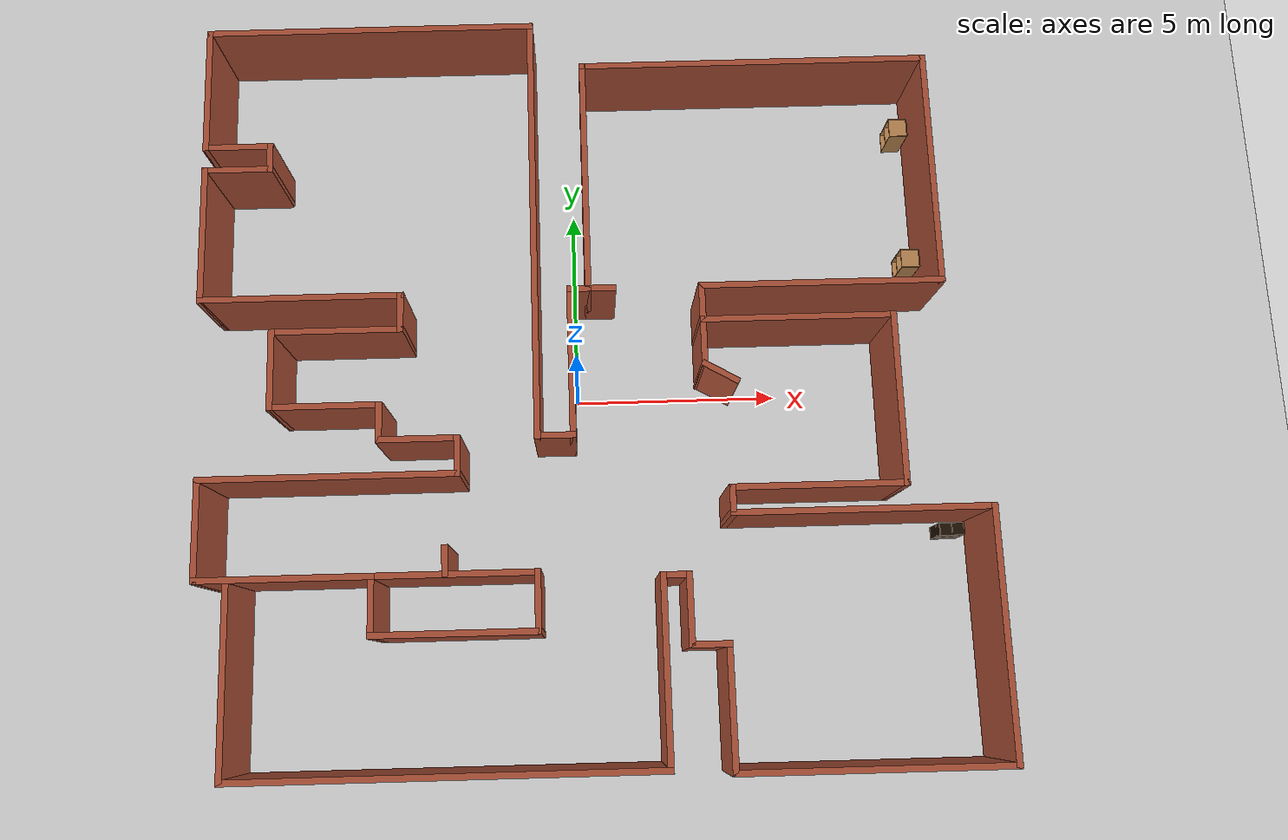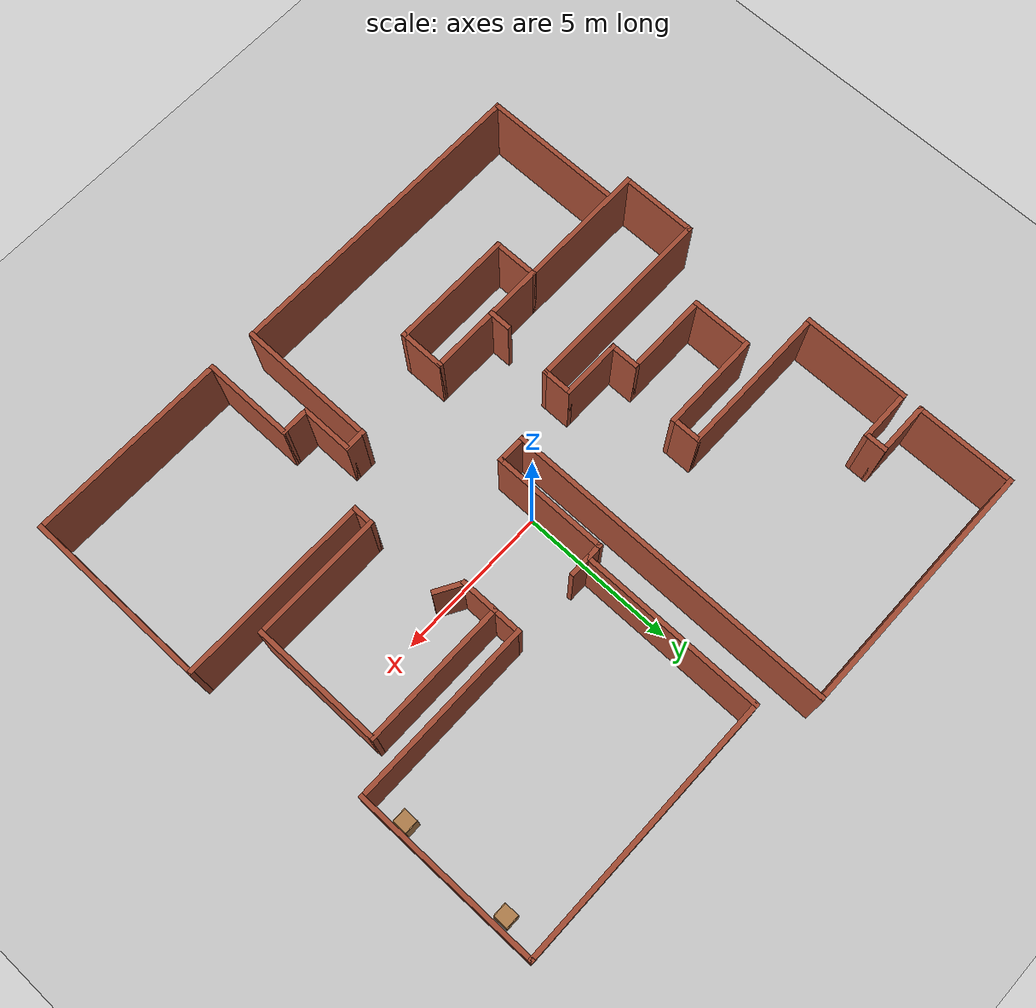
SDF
<sdf version="1.6">
 <world name="default">
  <model name="ground_plane">
   <static>1</static>
   <link name="link">
    <collision name="collision">
     <geometry><plane><normal>0 0 1</normal><size>100 100</size></plane></geometry>
     <surface>
      <contact><collide_bitmask>65535</collide_bitmask></contact>
      <friction><ode><mu>100</mu><mu2>50</mu2></ode></friction>
     </surface>
    </collision>
    <visual name="visual">
     <cast_shadows>0</cast_shadows>
     <geometry><plane><normal>0 0 1</normal><size>100 100</size></plane></geometry>
     <material>
      <script><uri>file://media/materials/scripts/gazebo.material</uri><name>Gazebo/Grey</name></script>
     </material>
    </visual>
   </link>
  </model>
  <model name="map_117">
   <pose>0.28791 0.113747 0 0 -0 0</pose>
   <link name="Wall_10">
    <collision name="Wall_10_Collision">
     <geometry><box><size>0.75 0.15 2.5</size></box></geometry>
     <pose>0 0 1.25 0 -0 0</pose>
    </collision>
    <visual name="Wall_10_Visual">
     <pose>0 0 1.25 0 -0 0</pose>
     <geometry><box><size>0.75 0.15 2.5</size></box></geometry>
     <material>
      <script><uri>file://media/materials/scripts/gazebo.material</uri><name>Gazebo/Bricks</name></script>
      <ambient>1 1 1 1</ambient>
     </material>
     <meta><layer>0</layer></meta>
    </visual>
    <pose>-7.775 5.8 0 0 -0 -1.5708</pose>
   </link>
   <link name="Wall_11">
    <collision name="Wall_11_Collision">
     <geometry><box><size>1.75 0.15 2.5</size></box></geometry>
     <pose>0 0 1.25 0 -0 0</pose>
    </collision>
    <visual name="Wall_11_Visual">
     <pose>0 0 1.25 0 -0 0</pose>
     <geometry><box><size>1.75 0.15 2.5</size></box></geometry>
     <material>
      <script><uri>file://media/materials/scripts/gazebo.material</uri><name>Gazebo/Bricks</name></script>
      <ambient>1 1 1 1</ambient>
     </material>
     <meta><layer>0</layer></meta>
    </visual>
    <pose>-8.575 5.5 0 0 -0 3.14159</pose>
   </link>
   <link name="Wall_21">
    <collision name="Wall_21_Collision">
     <geometry><box><size>3.5 0.15 2.5</size></box></geometry>
     <pose>0 0 1.25 0 -0 0</pose>
    </collision>
    <visual name="Wall_21_Visual">
     <pose>0 0 1.25 0 -0 0</pose>
     <geometry><box><size>3.5 0.15 2.5</size></box></geometry>
     <material>
      <script><uri>file://media/materials/scripts/gazebo.material</uri><name>Gazebo/Bricks</name></script>
      <ambient>1 1 1 1</ambient>
     </material>
     <meta><layer>0</layer></meta>
    </visual>
    <pose>-9.375 3.825 0 0 -0 -1.5708</pose>
   </link>
   <link name="Wall_22">
    <collision name="Wall_22_Collision">
     <geometry><box><size>5 0.15 2.5</size></box></geometry>
     <pose>0 0 1.25 0 -0 0</pose>
    </collision>
    <visual name="Wall_22_Visual">
     <pose>0 0 1.25 0 -0 0</pose>
     <geometry><box><size>5 0.15 2.5</size></box></geometry>
     <material>
      <script><uri>file://media/materials/scripts/gazebo.material</uri><name>Gazebo/Bricks</name></script>
      <ambient>1 1 1 1</ambient>
     </material>
     <meta><layer>0</layer></meta>
    </visual>
    <pose>-6.95 2.15 0 0 -0 0</pose>
   </link>
   <link name="Wall_23">
    <collision name="Wall_23_Collision">
     <geometry><box><size>1 0.15 2.5</size></box></geometry>
     <pose>0 0 1.25 0 -0 0</pose>
    </collision>
    <visual name="Wall_23_Visual">
     <pose>0 0 1.25 0 -0 0</pose>
     <geometry><box><size>1 0.15 2.5</size></box></geometry>
     <material>
      <script><uri>file://media/materials/scripts/gazebo.material</uri><name>Gazebo/Bricks</name></script>
      <ambient>1 1 1 1</ambient>
     </material>
     <meta><layer>0</layer></meta>
    </visual>
    <pose>-4.525 1.725 0 0 -0 -1.5708</pose>
   </link>
   <link name="Wall_24">
    <collision name="Wall_24_Collision">
     <geometry><box><size>3.25 0.15 2.5</size></box></geometry>
     <pose>0 0 1.25 0 -0 0</pose>
    </collision>
    <visual name="Wall_24_Visual">
     <pose>0 0 1.25 0 -0 0</pose>
     <geometry><box><size>3.25 0.15 2.5</size></box></geometry>
     <material>
      <script><uri>file://media/materials/scripts/gazebo.material</uri><name>Gazebo/Bricks</name></script>
      <ambient>1 1 1 1</ambient>
     </material>
     <meta><layer>0</layer></meta>
    </visual>
    <pose>-6.075 1.3 0 0 -0 3.14159</pose>
   </link>
   <link name="Wall_25">
    <collision name="Wall_25_Collision">
     <geometry><box><size>2 0.15 2.5</size></box></geometry>
     <pose>0 0 1.25 0 -0 0</pose>
    </collision>
    <visual name="Wall_25_Visual">
     <pose>0 0 1.25 0 -0 0</pose>
     <geometry><box><size>2 0.15 2.5</size></box></geometry>
     <material>
      <script><uri>file://media/materials/scripts/gazebo.material</uri><name>Gazebo/Bricks</name></script>
      <ambient>1 1 1 1</ambient>
     </material>
     <meta><layer>0</layer></meta>
    </visual>
    <pose>-7.625 0.375 0 0 -0 -1.5708</pose>
   </link>
   <link name="Wall_26">
    <collision name="Wall_26_Collision">
     <geometry><box><size>2.75 0.15 2.5</size></box></geometry>
     <pose>0 0 1.25 0 -0 0</pose>
    </collision>
    <visual name="Wall_26_Visual">
     <pose>0 0 1.25 0 -0 0</pose>
     <geometry><box><size>2.75 0.15 2.5</size></box></geometry>
     <material>
      <script><uri>file://media/materials/scripts/gazebo.material</uri><name>Gazebo/Bricks</name></script>
      <ambient>1 1 1 1</ambient>
     </material>
     <meta><layer>0</layer></meta>
    </visual>
    <pose>-6.325 -0.55 0 0 -0 0</pose>
   </link>
   <link name="Wall_27">
    <collision name="Wall_27_Collision">
     <geometry><box><size>1 0.15 2.5</size></box></geometry>
     <pose>0 0 1.25 0 -0 0</pose>
    </collision>
    <visual name="Wall_27_Visual">
     <pose>0 0 1.25 0 -0 0</pose>
     <geometry><box><size>1 0.15 2.5</size></box></geometry>
     <material>
      <script><uri>file://media/materials/scripts/gazebo.material</uri><name>Gazebo/Bricks</name></script>
      <ambient>1 1 1 1</ambient>
     </material>
     <meta><layer>0</layer></meta>
    </visual>
    <pose>-5.025 -0.975 0 0 -0 -1.5708</pose>
   </link>
   <link name="Wall_28">
    <collision name="Wall_28_Collision">
     <geometry><box><size>2 0.15 2.5</size></box></geometry>
     <pose>0 0 1.25 0 -0 0</pose>
    </collision>
    <visual name="Wall_28_Visual">
     <pose>0 0 1.25 0 -0 0</pose>
     <geometry><box><size>2 0.15 2.5</size></box></geometry>
     <material>
      <script><uri>file://media/materials/scripts/gazebo.material</uri><name>Gazebo/Bricks</name></script>
      <ambient>1 1 1 1</ambient>
     </material>
     <meta><layer>0</layer></meta>
    </visual>
    <pose>-4.1 -1.4 0 0 -0 0</pose>
   </link>
   <link name="Wall_29">
    <collision name="Wall_29_Collision">
     <geometry><box><size>1 0.15 2.5</size></box></geometry>
     <pose>0 0 1.25 0 -0 0</pose>
    </collision>
    <visual name="Wall_29_Visual">
     <pose>0 0 1.25 0 -0 0</pose>
     <geometry><box><size>1 0.15 2.5</size></box></geometry>
     <material>
      <script><uri>file://media/materials/scripts/gazebo.material</uri><name>Gazebo/Bricks</name></script>
      <ambient>1 1 1 1</ambient>
     </material>
     <meta><layer>0</layer></meta>
    </visual>
    <pose>-3.175 -1.825 0 0 -0 -1.5708</pose>
   </link>
   <link name="Wall_30">
    <collision name="Wall_30_Collision">
     <geometry><box><size>6.25 0.15 2.5</size></box></geometry>
     <pose>0 0 1.25 0 -0 0</pose>
    </collision>
    <visual name="Wall_30_Visual">
     <pose>0 0 1.25 0 -0 0</pose>
     <geometry><box><size>6.25 0.15 2.5</size></box></geometry>
     <material>
      <script><uri>file://media/materials/scripts/gazebo.material</uri><name>Gazebo/Bricks</name></script>
      <ambient>1 1 1 1</ambient>
     </material>
     <meta><layer>0</layer></meta>
    </visual>
    <pose>-6.225 -2.25 0 0 -0 3.14159</pose>
   </link>
   <link name="Wall_31">
    <collision name="Wall_31_Collision">
     <geometry><box><size>2.5 0.15 2.5</size></box></geometry>
     <pose>0 0 1.25 0 -0 0</pose>
    </collision>
    <visual name="Wall_31_Visual">
     <pose>0 0 1.25 0 -0 0</pose>
     <geometry><box><size>2.5 0.15 2.5</size></box></geometry>
     <material>
      <script><uri>file://media/materials/scripts/gazebo.material</uri><name>Gazebo/Bricks</name></script>
      <ambient>1 1 1 1</ambient>
     </material>
     <meta><layer>0</layer></meta>
    </visual>
    <pose>-9.275 -3.425 0 0 -0 -1.5708</pose>
   </link>
   <link name="Wall_32">
    <collision name="Wall_32_Collision">
     <geometry><box><size>4.25 0.15 2.5</size></box></geometry>
     <pose>0 0 1.25 0 -0 0</pose>
    </collision>
    <visual name="Wall_32_Visual">
     <pose>0 0 1.25 0 -0 0</pose>
     <geometry><box><size>4.25 0.15 2.5</size></box></geometry>
     <material>
      <script><uri>file://media/materials/scripts/gazebo.material</uri><name>Gazebo/Bricks</name></script>
      <ambient>1 1 1 1</ambient>
     </material>
     <meta><layer>0</layer></meta>
    </visual>
    <pose>-7.225 -4.6 0 0 -0 0</pose>
   </link>
   <link name="Wall_40">
    <collision name="Wall_40_Collision">
     <geometry><box><size>4.5 0.15 2.5</size></box></geometry>
     <pose>0 0 1.25 0 -0 0</pose>
    </collision>
    <visual name="Wall_40_Visual">
     <pose>0 0 1.25 0 -0 0</pose>
     <geometry><box><size>4.5 0.15 2.5</size></box></geometry>
     <material>
      <script><uri>file://media/materials/scripts/gazebo.material</uri><name>Gazebo/Bricks</name></script>
      <ambient>1 1 1 1</ambient>
     </material>
     <meta><layer>0</layer></meta>
    </visual>
    <pose>-8.525 -6.925 0 0 -0 -1.5708</pose>
   </link>
   <link name="Wall_41">
    <collision name="Wall_41_Collision">
     <geometry><box><size>10.25 0.15 2.5</size></box></geometry>
     <pose>0 0 1.25 0 -0 0</pose>
    </collision>
    <visual name="Wall_41_Visual">
     <pose>0 0 1.25 0 -0 0</pose>
     <geometry><box><size>10.25 0.15 2.5</size></box></geometry>
     <material>
      <script><uri>file://media/materials/scripts/gazebo.material</uri><name>Gazebo/Bricks</name></script>
      <ambient>1 1 1 1</ambient>
     </material>
     <meta><layer>0</layer></meta>
    </visual>
    <pose>-3.475 -9.1 0 0 -0 0</pose>
   </link>
   <link name="Wall_42">
    <collision name="Wall_42_Collision">
     <geometry><box><size>4.5 0.15 2.5</size></box></geometry>
     <pose>0 0 1.25 0 -0 0</pose>
    </collision>
    <visual name="Wall_42_Visual">
     <pose>0 0 1.25 0 -0 0</pose>
     <geometry><box><size>4.5 0.15 2.5</size></box></geometry>
     <material>
      <script><uri>file://media/materials/scripts/gazebo.material</uri><name>Gazebo/Bricks</name></script>
      <ambient>1 1 1 1</ambient>
     </material>
     <meta><layer>0</layer></meta>
    </visual>
    <pose>1.575 -6.925 0 0 -0 1.5708</pose>
   </link>
   <link name="Wall_43">
    <collision name="Wall_43_Collision">
     <geometry><box><size>0.75 0.15 2.5</size></box></geometry>
     <pose>0 0 1.25 0 -0 0</pose>
    </collision>
    <visual name="Wall_43_Visual">
     <pose>0 0 1.25 0 -0 0</pose>
     <geometry><box><size>0.75 0.15 2.5</size></box></geometry>
     <material>
      <script><uri>file://media/materials/scripts/gazebo.material</uri><name>Gazebo/Bricks</name></script>
      <ambient>1 1 1 1</ambient>
     </material>
     <meta><layer>0</layer></meta>
    </visual>
    <pose>1.875 -4.75 0 0 -0 0</pose>
   </link>
   <link name="Wall_44">
    <collision name="Wall_44_Collision">
     <geometry><box><size>1.75 0.15 2.5</size></box></geometry>
     <pose>0 0 1.25 0 -0 0</pose>
    </collision>
    <visual name="Wall_44_Visual">
     <pose>0 0 1.25 0 -0 0</pose>
     <geometry><box><size>1.75 0.15 2.5</size></box></geometry>
     <material>
      <script><uri>file://media/materials/scripts/gazebo.material</uri><name>Gazebo/Bricks</name></script>
      <ambient>1 1 1 1</ambient>
     </material>
     <meta><layer>0</layer></meta>
    </visual>
    <pose>2.175 -5.55 0 0 -0 -1.5708</pose>
   </link>
   <link name="Wall_45">
    <collision name="Wall_45_Collision">
     <geometry><box><size>1 0.15 2.5</size></box></geometry>
     <pose>0 0 1.25 0 -0 0</pose>
    </collision>
    <visual name="Wall_45_Visual">
     <pose>0 0 1.25 0 -0 0</pose>
     <geometry><box><size>1 0.15 2.5</size></box></geometry>
     <material>
      <script><uri>file://media/materials/scripts/gazebo.material</uri><name>Gazebo/Bricks</name></script>
      <ambient>1 1 1 1</ambient>
     </material>
     <meta><layer>0</layer></meta>
    </visual>
    <pose>2.6 -6.35 0 0 -0 0</pose>
   </link>
   <link name="Wall_46">
    <collision name="Wall_46_Collision">
     <geometry><box><size>3 0.15 2.5</size></box></geometry>
     <pose>0 0 1.25 0 -0 0</pose>
    </collision>
    <visual name="Wall_46_Visual">
     <pose>0 0 1.25 0 -0 0</pose>
     <geometry><box><size>3 0.15 2.5</size></box></geometry>
     <material>
      <script><uri>file://media/materials/scripts/gazebo.material</uri><name>Gazebo/Bricks</name></script>
      <ambient>1 1 1 1</ambient>
     </material>
     <meta><layer>0</layer></meta>
    </visual>
    <pose>3.025 -7.775 0 0 -0 -1.5708</pose>
   </link>
   <link name="Wall_47">
    <collision name="Wall_47_Collision">
     <geometry><box><size>6.5 0.15 2.5</size></box></geometry>
     <pose>0 0 1.25 0 -0 0</pose>
    </collision>
    <visual name="Wall_47_Visual">
     <pose>0 0 1.25 0 -0 0</pose>
     <geometry><box><size>6.5 0.15 2.5</size></box></geometry>
     <material>
      <script><uri>file://media/materials/scripts/gazebo.material</uri><name>Gazebo/Bricks</name></script>
      <ambient>1 1 1 1</ambient>
     </material>
     <meta><layer>0</layer></meta>
    </visual>
    <pose>6.2 -9.2 0 0 -0 0</pose>
   </link>
   <link name="Wall_48">
    <collision name="Wall_48_Collision">
     <geometry><box><size>6 0.15 2.5</size></box></geometry>
     <pose>0 0 1.25 0 -0 0</pose>
    </collision>
    <visual name="Wall_48_Visual">
     <pose>0 0 1.25 0 -0 0</pose>
     <geometry><box><size>6 0.15 2.5</size></box></geometry>
     <material>
      <script><uri>file://media/materials/scripts/gazebo.material</uri><name>Gazebo/Bricks</name></script>
      <ambient>1 1 1 1</ambient>
     </material>
     <meta><layer>0</layer></meta>
    </visual>
    <pose>9.375 -6.275 0 0 -0 1.5708</pose>
   </link>
   <link name="Wall_49">
    <collision name="Wall_49_Collision">
     <geometry><box><size>6.25 0.15 2.5</size></box></geometry>
     <pose>0 0 1.25 0 -0 0</pose>
    </collision>
    <visual name="Wall_49_Visual">
     <pose>0 0 1.25 0 -0 0</pose>
     <geometry><box><size>6.25 0.15 2.5</size></box></geometry>
     <material>
      <script><uri>file://media/materials/scripts/gazebo.material</uri><name>Gazebo/Bricks</name></script>
      <ambient>1 1 1 1</ambient>
     </material>
     <meta><layer>0</layer></meta>
    </visual>
    <pose>6.325 -3.35 0 0 -0 3.14159</pose>
   </link>
   <link name="Wall_50">
    <collision name="Wall_50_Collision">
     <geometry><box><size>0.75 0.15 2.5</size></box></geometry>
     <pose>0 0 1.25 0 -0 0</pose>
    </collision>
    <visual name="Wall_50_Visual">
     <pose>0 0 1.25 0 -0 0</pose>
     <geometry><box><size>0.75 0.15 2.5</size></box></geometry>
     <material>
      <script><uri>file://media/materials/scripts/gazebo.material</uri><name>Gazebo/Bricks</name></script>
      <ambient>1 1 1 1</ambient>
     </material>
     <meta><layer>0</layer></meta>
    </visual>
    <pose>3.275 -3.05 0 0 -0 1.5708</pose>
   </link>
   <link name="Wall_51">
    <collision name="Wall_51_Collision">
     <geometry><box><size>4.25 0.15 2.5</size></box></geometry>
     <pose>0 0 1.25 0 -0 0</pose>
    </collision>
    <visual name="Wall_51_Visual">
     <pose>0 0 1.25 0 -0 0</pose>
     <geometry><box><size>4.25 0.15 2.5</size></box></geometry>
     <material>
      <script><uri>file://media/materials/scripts/gazebo.material</uri><name>Gazebo/Bricks</name></script>
      <ambient>1 1 1 1</ambient>
     </material>
     <meta><layer>0</layer></meta>
    </visual>
    <pose>5.325 -2.75 0 0 -0 0</pose>
   </link>
   <link name="Wall_52">
    <collision name="Wall_52_Collision">
     <geometry><box><size>4.25 0.15 2.5</size></box></geometry>
     <pose>0 0 1.25 0 -0 0</pose>
    </collision>
    <visual name="Wall_52_Visual">
     <pose>0 0 1.25 0 -0 0</pose>
     <geometry><box><size>4.25 0.15 2.5</size></box></geometry>
     <material>
      <script><uri>file://media/materials/scripts/gazebo.material</uri><name>Gazebo/Bricks</name></script>
      <ambient>1 1 1 1</ambient>
     </material>
     <meta><layer>0</layer></meta>
    </visual>
    <pose>7.375 -0.7 0 0 -0 1.5708</pose>
   </link>
   <link name="Wall_53">
    <collision name="Wall_53_Collision">
     <geometry><box><size>4.75 0.15 2.5</size></box></geometry>
     <pose>0 0 1.25 0 -0 0</pose>
    </collision>
    <visual name="Wall_53_Visual">
     <pose>0 0 1.25 0 -0 0</pose>
     <geometry><box><size>4.75 0.15 2.5</size></box></geometry>
     <material>
      <script><uri>file://media/materials/scripts/gazebo.material</uri><name>Gazebo/Bricks</name></script>
      <ambient>1 1 1 1</ambient>
     </material>
     <meta><layer>0</layer></meta>
    </visual>
    <pose>5.075 1.35 0 0 -0 3.14159</pose>
   </link>
   <link name="Wall_54">
    <collision name="Wall_54_Collision">
     <geometry><box><size>1 0.15 2.5</size></box></geometry>
     <pose>0 0 1.25 0 -0 0</pose>
    </collision>
    <visual name="Wall_54_Visual">
     <pose>0 0 1.25 0 -0 0</pose>
     <geometry><box><size>1 0.15 2.5</size></box></geometry>
     <material>
      <script><uri>file://media/materials/scripts/gazebo.material</uri><name>Gazebo/Bricks</name></script>
      <ambient>1 1 1 1</ambient>
     </material>
     <meta><layer>0</layer></meta>
    </visual>
    <pose>2.775 1.775 0 0 -0 1.5708</pose>
   </link>
   <link name="Wall_55">
    <collision name="Wall_55_Collision">
     <geometry><box><size>6 0.15 2.5</size></box></geometry>
     <pose>0 0 1.25 0 -0 0</pose>
    </collision>
    <visual name="Wall_55_Visual">
     <pose>0 0 1.25 0 -0 0</pose>
     <geometry><box><size>6 0.15 2.5</size></box></geometry>
     <material>
      <script><uri>file://media/materials/scripts/gazebo.material</uri><name>Gazebo/Bricks</name></script>
      <ambient>1 1 1 1</ambient>
     </material>
     <meta><layer>0</layer></meta>
    </visual>
    <pose>5.7 2.2 0 0 -0 0</pose>
   </link>
   <link name="Wall_58">
    <collision name="Wall_58_Collision">
     <geometry><box><size>6 0.15 2.5</size></box></geometry>
     <pose>0 0 1.25 0 -0 0</pose>
    </collision>
    <visual name="Wall_58_Visual">
     <pose>0 0 1.25 0 -0 0</pose>
     <geometry><box><size>6 0.15 2.5</size></box></geometry>
     <material>
      <script><uri>file://media/materials/scripts/gazebo.material</uri><name>Gazebo/Bricks</name></script>
      <ambient>1 1 1 1</ambient>
     </material>
     <meta><layer>0</layer></meta>
    </visual>
    <pose>8.625 5.125 0 0 -0 1.5708</pose>
   </link>
   <link name="Wall_59">
    <collision name="Wall_59_Collision">
     <geometry><box><size>8.75 0.15 2.5</size></box></geometry>
     <pose>0 0 1.25 0 -0 0</pose>
    </collision>
    <visual name="Wall_59_Visual">
     <pose>0 0 1.25 0 -0 0</pose>
     <geometry><box><size>8.75 0.15 2.5</size></box></geometry>
     <material>
      <script><uri>file://media/materials/scripts/gazebo.material</uri><name>Gazebo/Bricks</name></script>
      <ambient>1 1 1 1</ambient>
     </material>
     <meta><layer>0</layer></meta>
    </visual>
    <pose>4.325 8.05 0 0 -0 3.14159</pose>
   </link>
   <link name="Wall_60">
    <collision name="Wall_60_Collision">
     <geometry><box><size>6 0.15 2.5</size></box></geometry>
     <pose>0 0 1.25 0 -0 0</pose>
    </collision>
    <visual name="Wall_60_Visual">
     <pose>0 0 1.25 0 -0 0</pose>
     <geometry><box><size>6 0.15 2.5</size></box></geometry>
     <material>
      <script><uri>file://media/materials/scripts/gazebo.material</uri><name>Gazebo/Bricks</name></script>
      <ambient>1 1 1 1</ambient>
     </material>
     <meta><layer>0</layer></meta>
    </visual>
    <pose>0.024999 5.125 0 0 -0 -1.5708</pose>
   </link>
   <link name="Wall_64">
    <collision name="Wall_64_Collision">
     <geometry><box><size>0.75 0.15 2.5</size></box></geometry>
     <pose>0 0 1.25 0 -0 0</pose>
    </collision>
    <visual name="Wall_64_Visual">
     <pose>0 0 1.25 0 -0 0</pose>
     <geometry><box><size>0.75 0.15 2.5</size></box></geometry>
     <material>
      <script><uri>file://media/materials/scripts/gazebo.material</uri><name>Gazebo/Bricks</name></script>
      <ambient>1 1 1 1</ambient>
     </material>
     <meta><layer>0</layer></meta>
    </visual>
    <pose>0.324999 2.2 0 0 -0 0</pose>
   </link>
   <link name="Wall_66">
    <collision name="Wall_66_Collision">
     <geometry><box><size>8.25 0.15 2.5</size></box></geometry>
     <pose>0 0 1.25 0 -0 0</pose>
    </collision>
    <visual name="Wall_66_Visual">
     <pose>0 0 1.25 0 -0 0</pose>
     <geometry><box><size>8.25 0.15 2.5</size></box></geometry>
     <material>
      <script><uri>file://media/materials/scripts/gazebo.material</uri><name>Gazebo/Bricks</name></script>
      <ambient>1 1 1 1</ambient>
     </material>
     <meta><layer>0</layer></meta>
    </visual>
    <pose>-5.325 9.2 0 0 -0 0</pose>
   </link>
   <link name="Wall_67">
    <collision name="Wall_67_Collision">
     <geometry><box><size>10.75 0.15 2.5</size></box></geometry>
     <pose>0 0 1.25 0 -0 0</pose>
    </collision>
    <visual name="Wall_67_Visual">
     <pose>0 0 1.25 0 -0 0</pose>
     <geometry><box><size>10.75 0.15 2.5</size></box></geometry>
     <material>
      <script><uri>file://media/materials/scripts/gazebo.material</uri><name>Gazebo/Bricks</name></script>
      <ambient>1 1 1 1</ambient>
     </material>
     <meta><layer>0</layer></meta>
    </visual>
    <pose>-1.275 3.9 0 0 -0 -1.5708</pose>
   </link>
   <link name="Wall_68">
    <collision name="Wall_68_Collision">
     <geometry><box><size>1 0.15 2.5</size></box></geometry>
     <pose>0 0 1.25 0 -0 0</pose>
    </collision>
    <visual name="Wall_68_Visual">
     <pose>0 0 1.25 0 -0 0</pose>
     <geometry><box><size>1 0.15 2.5</size></box></geometry>
     <material>
      <script><uri>file://media/materials/scripts/gazebo.material</uri><name>Gazebo/Bricks</name></script>
      <ambient>1 1 1 1</ambient>
     </material>
     <meta><layer>0</layer></meta>
    </visual>
    <pose>-0.850001 -1.4 0 0 -0 0</pose>
   </link>
   <link name="Wall_69">
    <collision name="Wall_69_Collision">
     <geometry><box><size>3.75 0.15 2.5</size></box></geometry>
     <pose>0 0 1.25 0 -0 0</pose>
    </collision>
    <visual name="Wall_69_Visual">
     <pose>0 0 1.25 0 -0 0</pose>
     <geometry><box><size>3.75 0.15 2.5</size></box></geometry>
     <material>
      <script><uri>file://media/materials/scripts/gazebo.material</uri><name>Gazebo/Bricks</name></script>
      <ambient>1 1 1 1</ambient>
     </material>
     <meta><layer>0</layer></meta>
    </visual>
    <pose>-0.425 0.4 0 0 -0 1.5708</pose>
   </link>
   <link name="Wall_71">
    <collision name="Wall_71_Collision">
     <geometry><box><size>0.6 0.15 2.5</size></box></geometry>
     <pose>0 0 1.25 0 -0 0</pose>
    </collision>
    <visual name="Wall_71_Visual">
     <pose>0 0 1.25 0 -0 0</pose>
     <geometry><box><size>0.6 0.15 2.5</size></box></geometry>
     <material>
      <script><uri>file://media/materials/scripts/gazebo.material</uri><name>Gazebo/Bricks</name></script>
      <ambient>1 1 1 1</ambient>
     </material>
     <meta><layer>0</layer></meta>
    </visual>
    <pose>-0.200001 2.2 0 0 -0 0</pose>
   </link>
   <link name="Wall_73">
    <collision name="Wall_73_Collision">
     <geometry><box><size>4 0.15 2.5</size></box></geometry>
     <pose>0 0 1.25 0 -0 0</pose>
    </collision>
    <visual name="Wall_73_Visual">
     <pose>0 0 1.25 0 -0 0</pose>
     <geometry><box><size>4 0.15 2.5</size></box></geometry>
     <material>
      <script><uri>file://media/materials/scripts/gazebo.material</uri><name>Gazebo/Bricks</name></script>
      <ambient>1 1 1 1</ambient>
     </material>
     <meta><layer>0</layer></meta>
    </visual>
    <pose>-3.25 -4.6 0 0 -0 0</pose>
   </link>
   <link name="Wall_74">
    <collision name="Wall_74_Collision">
     <geometry><box><size>1.5 0.15 2.5</size></box></geometry>
     <pose>0 0 1.25 0 -0 0</pose>
    </collision>
    <visual name="Wall_74_Visual">
     <pose>0 0 1.25 0 -0 0</pose>
     <geometry><box><size>1.5 0.15 2.5</size></box></geometry>
     <material>
      <script><uri>file://media/materials/scripts/gazebo.material</uri><name>Gazebo/Bricks</name></script>
      <ambient>1 1 1 1</ambient>
     </material>
     <meta><layer>0</layer></meta>
    </visual>
    <pose>-1.325 -5.275 0 0 -0 -1.5708</pose>
   </link>
   <link name="Wall_75">
    <collision name="Wall_75_Collision">
     <geometry><box><size>4 0.15 2.5</size></box></geometry>
     <pose>0 0 1.25 0 -0 0</pose>
    </collision>
    <visual name="Wall_75_Visual">
     <pose>0 0 1.25 0 -0 0</pose>
     <geometry><box><size>4 0.15 2.5</size></box></geometry>
     <material>
      <script><uri>file://media/materials/scripts/gazebo.material</uri><name>Gazebo/Bricks</name></script>
      <ambient>1 1 1 1</ambient>
     </material>
     <meta><layer>0</layer></meta>
    </visual>
    <pose>-3.25 -5.95 0 0 -0 3.14159</pose>
   </link>
   <link name="Wall_76">
    <collision name="Wall_76_Collision">
     <geometry><box><size>1.5 0.15 2.5</size></box></geometry>
     <pose>0 0 1.25 0 -0 0</pose>
    </collision>
    <visual name="Wall_76_Visual">
     <pose>0 0 1.25 0 -0 0</pose>
     <geometry><box><size>1.5 0.15 2.5</size></box></geometry>
     <material>
      <script><uri>file://media/materials/scripts/gazebo.material</uri><name>Gazebo/Bricks</name></script>
      <ambient>1 1 1 1</ambient>
     </material>
     <meta><layer>0</layer></meta>
    </visual>
    <pose>-5.175 -5.275 0 0 -0 1.5708</pose>
   </link>
   <link name="Wall_78">
    <collision name="Wall_78_Collision">
     <geometry><box><size>0.75 0.15 2.5</size></box></geometry>
     <pose>0 0 1.25 0 -0 0</pose>
    </collision>
    <visual name="Wall_78_Visual">
     <pose>0 0 1.25 0 -0 0</pose>
     <geometry><box><size>0.75 0.15 2.5</size></box></geometry>
     <material>
      <script><uri>file://media/materials/scripts/gazebo.material</uri><name>Gazebo/Bricks</name></script>
      <ambient>1 1 1 1</ambient>
     </material>
     <meta><layer>0</layer></meta>
    </visual>
    <pose>-3.4674 -4.28498 0 0 -0 1.5708</pose>
   </link>
   <link name="Wall_8">
    <collision name="Wall_8_Collision">
     <geometry><box><size>3.25 0.15 2.5</size></box></geometry>
     <pose>0 0 1.25 0 -0 0</pose>
    </collision>
    <visual name="Wall_8_Visual">
     <pose>0 0 1.25 0 -0 0</pose>
     <geometry><box><size>3.25 0.15 2.5</size></box></geometry>
     <material>
      <script><uri>file://media/materials/scripts/gazebo.material</uri><name>Gazebo/Bricks</name></script>
      <ambient>1 1 1 1</ambient>
     </material>
     <meta><layer>0</layer></meta>
    </visual>
    <pose>-9.375 7.65 0 0 -0 -1.5708</pose>
   </link>
   <link name="Wall_80">
    <collision name="Wall_80_Collision">
     <geometry><box><size>1.25 0.15 2.5</size></box></geometry>
     <pose>0 0 1.25 0 -0 0</pose>
    </collision>
    <visual name="Wall_80_Visual">
     <pose>0 0 1.25 0 -0 0</pose>
     <geometry><box><size>1.25 0.15 2.5</size></box></geometry>
     <material>
      <script><uri>file://media/materials/scripts/gazebo.material</uri><name>Gazebo/Bricks</name></script>
      <ambient>1 1 1 1</ambient>
     </material>
     <meta><layer>0</layer></meta>
    </visual>
    <pose>2.775 0.8 0 0 -0 -1.5708</pose>
   </link>
   <link name="Wall_81">
    <collision name="Wall_81_Collision">
     <geometry><box><size>1 0.15 2.5</size></box></geometry>
     <pose>0 0 1.25 0 -0 0</pose>
    </collision>
    <visual name="Wall_81_Visual">
     <pose>0 0 1.25 0 -0 0</pose>
     <geometry><box><size>1 0.15 2.5</size></box></geometry>
     <material>
      <script><uri>file://media/materials/scripts/gazebo.material</uri><name>Gazebo/Bricks</name></script>
      <ambient>1 1 1 1</ambient>
     </material>
     <meta><layer>0</layer></meta>
    </visual>
    <pose>3.14306 0.0375 0 0 -0 -0.523599</pose>
   </link>
   <link name="Wall_9">
    <collision name="Wall_9_Collision">
     <geometry><box><size>1.75 0.15 2.5</size></box></geometry>
     <pose>0 0 1.25 0 -0 0</pose>
    </collision>
    <visual name="Wall_9_Visual">
     <pose>0 0 1.25 0 -0 0</pose>
     <geometry><box><size>1.75 0.15 2.5</size></box></geometry>
     <material>
      <script><uri>file://media/materials/scripts/gazebo.material</uri><name>Gazebo/Bricks</name></script>
      <ambient>1 1 1 1</ambient>
     </material>
     <meta><layer>0</layer></meta>
    </visual>
    <pose>-8.575 6.1 0 0 -0 0</pose>
   </link>
   <static>1</static>
  </model>
  <model name="6_Cube_StorageE_0">
   <link name="Wall_0">
    <pose>0 0 0.01 0 -0 0</pose>
    <inertial>
     <mass>1.6201</mass>
     <inertia><ixx>0.0119</ixx><iyy>0.0631</iyy><izz>0.0513</izz><ixy>0</ixy><ixz>0</ixz><iyz>0</iyz></inertia>
    </inertial>
    <collision name="Wall_0_Collision"><geometry><box><size>0.616 0.296 0.02</size></box></geometry></collision>
    <visual name="Wall_0_Visual">
     <geometry><box><size>0.616 0.296 0.02</size></box></geometry>
     <material>
      <script><uri>file://media/materials/scripts/gazebo.material</uri><name>Gazebo/Grey</name></script>
      <ambient>0.105882 0.0509804 0 1</ambient>
     </material>
    </visual>
   </link>
   <joint name="0_2" type="fixed">
    <pose>-0.308 0 0 0 -0 0</pose>
    <parent>Wall_2</parent>
    <child>Wall_0</child>
    <axis>
     <xyz>1 0 0</xyz>
     <use_parent_model_frame>0</use_parent_model_frame>
     <limit><lower>-1e+16</lower><upper>1e+16</upper></limit>
    </axis>
   </joint>
   <joint name="0_12" type="fixed">
    <parent>Wall_12</parent>
    <child>Wall_0</child>
    <axis>
     <xyz>0 0 1</xyz>
     <use_parent_model_frame>0</use_parent_model_frame>
     <limit><lower>-1e+16</lower><upper>1e+16</upper></limit>
    </axis>
   </joint>
   <joint name="0_4" type="fixed">
    <pose>0.308 0 0 0 -0 0</pose>
    <parent>Wall_4</parent>
    <child>Wall_0</child>
    <axis>
     <xyz>1 0 0</xyz>
     <use_parent_model_frame>0</use_parent_model_frame>
     <limit><lower>-1e+16</lower><upper>1e+16</upper></limit>
    </axis>
   </joint>
   <link name="Wall_10">
    <pose>0 0 0.61 0 -0 0</pose>
    <inertial>
     <mass>1.6201</mass>
     <inertia><ixx>0.0119</ixx><iyy>0.0631</iyy><izz>0.0513</izz><ixy>0</ixy><ixz>0</ixz><iyz>0</iyz></inertia>
    </inertial>
    <collision name="Wall_10_Collision"><geometry><box><size>0.616 0.296 0.02</size></box></geometry></collision>
    <visual name="Wall_10_Visual">
     <geometry><box><size>0.616 0.296 0.02</size></box></geometry>
     <material>
      <script><uri>file://media/materials/scripts/gazebo.material</uri><name>Gazebo/Grey</name></script>
      <ambient>0.105882 0.0509804 0 1</ambient>
     </material>
    </visual>
   </link>
   <joint name="10_2" type="fixed">
    <pose>-0.308 0 0 0 -0 0</pose>
    <parent>Wall_2</parent>
    <child>Wall_10</child>
    <axis>
     <xyz>1 0 0</xyz>
     <use_parent_model_frame>0</use_parent_model_frame>
     <limit><lower>-1e+16</lower><upper>1e+16</upper></limit>
    </axis>
   </joint>
   <joint name="10_12" type="fixed">
    <parent>Wall_12</parent>
    <child>Wall_10</child>
    <axis>
     <xyz>0 0 1</xyz>
     <use_parent_model_frame>0</use_parent_model_frame>
     <limit><lower>-1e+16</lower><upper>1e+16</upper></limit>
    </axis>
   </joint>
   <joint name="10_4" type="fixed">
    <pose>0.308 0 0 0 -0 0</pose>
    <parent>Wall_4</parent>
    <child>Wall_10</child>
    <axis>
     <xyz>1 0 0</xyz>
     <use_parent_model_frame>0</use_parent_model_frame>
     <limit><lower>-1e+16</lower><upper>1e+16</upper></limit>
    </axis>
   </joint>
   <link name="Wall_12">
    <pose>0 0 0.4575 0 -0 0</pose>
    <inertial>
     <mass>2.4065</mass>
     <inertia><ixx>0.0177</ixx><iyy>0.1855</iyy><izz>0.168</izz><ixy>0</ixy><ixz>0</ixz><iyz>0</iyz></inertia>
    </inertial>
    <collision name="Wall_12_Collision"><geometry><box><size>0.02 0.296 0.915</size></box></geometry></collision>
    <visual name="Wall_12_Visual">
     <geometry><box><size>0.02 0.296 0.915</size></box></geometry>
     <material>
      <script><uri>file://media/materials/scripts/gazebo.material</uri><name>Gazebo/Grey</name></script>
      <ambient>0.105882 0.0509804 0 1</ambient>
     </material>
    </visual>
   </link>
   <link name="Wall_2">
    <pose>-0.298 0 0.4575 0 -0 0</pose>
    <inertial>
     <mass>2.4065</mass>
     <inertia><ixx>0.0177</ixx><iyy>0.1855</iyy><izz>0.168</izz><ixy>0</ixy><ixz>0</ixz><iyz>0</iyz></inertia>
    </inertial>
    <collision name="Wall_2_Collision"><geometry><box><size>0.02 0.296 0.915</size></box></geometry></collision>
    <visual name="Wall_2_Visual">
     <geometry><box><size>0.02 0.296 0.915</size></box></geometry>
     <material>
      <script><uri>file://media/materials/scripts/gazebo.material</uri><name>Gazebo/Grey</name></script>
      <ambient>0.105882 0.0509804 0 1</ambient>
     </material>
    </visual>
   </link>
   <link name="Wall_4">
    <pose>0.298 0 0.4575 0 -0 0</pose>
    <inertial>
     <mass>2.4065</mass>
     <inertia><ixx>0.0177</ixx><iyy>0.1855</iyy><izz>0.168</izz><ixy>0</ixy><ixz>0</ixz><iyz>0</iyz></inertia>
    </inertial>
    <collision name="Wall_4_Collision"><geometry><box><size>0.02 0.296 0.915</size></box></geometry></collision>
    <visual name="Wall_4_Visual">
     <geometry><box><size>0.02 0.296 0.915</size></box></geometry>
     <material>
      <script><uri>file://media/materials/scripts/gazebo.material</uri><name>Gazebo/Grey</name></script>
      <ambient>0.105882 0.0509804 0 1</ambient>
     </material>
    </visual>
   </link>
   <link name="Wall_6">
    <pose>0 0 0.905 0 -0 0</pose>
    <inertial>
     <mass>1.6201</mass>
     <inertia><ixx>0.0119</ixx><iyy>0.0631</iyy><izz>0.0513</izz><ixy>0</ixy><ixz>0</ixz><iyz>0</iyz></inertia>
    </inertial>
    <collision name="Wall_6_Collision"><geometry><box><size>0.616 0.296 0.02</size></box></geometry></collision>
    <visual name="Wall_6_Visual">
     <geometry><box><size>0.616 0.296 0.02</size></box></geometry>
     <material>
      <script><uri>file://media/materials/scripts/gazebo.material</uri><name>Gazebo/Grey</name></script>
      <ambient>0.105882 0.0509804 0 1</ambient>
     </material>
    </visual>
   </link>
   <joint name="6_2" type="fixed">
    <pose>-0.308 0 0 0 -0 0</pose>
    <parent>Wall_2</parent>
    <child>Wall_6</child>
    <axis>
     <xyz>2 0 0</xyz>
     <use_parent_model_frame>0</use_parent_model_frame>
     <limit><lower>-1e+16</lower><upper>1e+16</upper></limit>
    </axis>
   </joint>
   <joint name="6_12" type="fixed">
    <parent>Wall_12</parent>
    <child>Wall_6</child>
    <axis>
     <xyz>0 0 1</xyz>
     <use_parent_model_frame>0</use_parent_model_frame>
     <limit><lower>-1e+16</lower><upper>1e+16</upper></limit>
    </axis>
   </joint>
   <joint name="6_4" type="fixed">
    <pose>0.308 0 0 0 -0 0</pose>
    <parent>Wall_4</parent>
    <child>Wall_6</child>
    <axis>
     <xyz>1 0 0</xyz>
     <use_parent_model_frame>0</use_parent_model_frame>
     <limit><lower>-1e+16</lower><upper>1e+16</upper></limit>
    </axis>
   </joint>
   <link name="Wall_8">
    <pose>0 0 0.305 0 -0 0</pose>
    <inertial>
     <mass>1.6201</mass>
     <inertia><ixx>0.0119</ixx><iyy>0.0631</iyy><izz>0.0513</izz><ixy>0</ixy><ixz>0</ixz><iyz>0</iyz></inertia>
    </inertial>
    <collision name="Wall_8_Collision"><geometry><box><size>0.616 0.296 0.02</size></box></geometry></collision>
    <visual name="Wall_8_Visual">
     <geometry><box><size>0.616 0.296 0.02</size></box></geometry>
     <material>
      <script><uri>file://media/materials/scripts/gazebo.material</uri><name>Gazebo/Grey</name></script>
      <ambient>0.105882 0.0509804 0 1</ambient>
     </material>
    </visual>
   </link>
   <joint name="8_2" type="fixed">
    <pose>-0.308 0 0 0 -0 0</pose>
    <parent>Wall_2</parent>
    <child>Wall_8</child>
    <axis>
     <xyz>1 0 0</xyz>
     <use_parent_model_frame>0</use_parent_model_frame>
     <limit><lower>-1e+16</lower><upper>1e+16</upper></limit>
    </axis>
   </joint>
   <joint name="8_12" type="fixed">
    <parent>Wall_12</parent>
    <child>Wall_8</child>
    <axis>
     <xyz>0 0 1</xyz>
     <use_parent_model_frame>0</use_parent_model_frame>
     <limit><lower>-1e+16</lower><upper>1e+16</upper></limit>
    </axis>
   </joint>
   <joint name="8_4" type="fixed">
    <pose>0.308 0 0 0 -0 0</pose>
    <parent>Wall_4</parent>
    <child>Wall_8</child>
    <axis>
     <xyz>1 0 0</xyz>
     <use_parent_model_frame>0</use_parent_model_frame>
     <limit><lower>-1e+16</lower><upper>1e+16</upper></limit>
    </axis>
   </joint>
   <static>1</static>
   <pose>9.05348 -3.58024 0 0 -0 0</pose>
  </model>
  <model name="cabinet_1">
   <static>1</static>
   <link name="cabinet_bottom_plate">
    <inertial>
     <pose>0 0 -1 0 -0 0</pose>
     <inertia><ixx>2.05</ixx><ixy>0</ixy><ixz>0</ixz><iyy>2.05</iyy><iyz>0</iyz><izz>2.05</izz></inertia>
     <mass>25</mass>
    </inertial>
    <collision name="cabinet_bottom_plate_geom">
     <pose>0 0 0.01 0 -0 0</pose>
     <geometry><box><size>0.45 0.45 0.02</size></box></geometry>
    </collision>
    <visual name="cabinet_bottom_plate_geom_visual">
     <pose>0 0 0.01 0 -0 0</pose>
     <geometry><box><size>0.45 0.45 0.02</size></box></geometry>
     <material>
      <script><uri>file://media/materials/scripts/gazebo.material</uri><name>Gazebo/Wood</name></script>
     </material>
    </visual>
    <collision name="cabinet_bottom_plate_geom_cabinet_back_plate">
     <pose>0.235 0 0.51 0 -0 0</pose>
     <geometry><box><size>0.02 0.45 1.02</size></box></geometry>
    </collision>
    <visual name="cabinet_bottom_plate_geom_cabinet_back_plate_visual">
     <pose>0.235 0 0.51 0 -0 0</pose>
     <geometry><box><size>0.02 0.45 1.02</size></box></geometry>
     <material>
      <script><uri>file://media/materials/scripts/gazebo.material</uri><name>Gazebo/Wood</name></script>
     </material>
    </visual>
    <collision name="cabinet_bottom_plate_geom_cabinet_left_plate">
     <pose>0 0.235 0.51 0 -0 0</pose>
     <geometry><box><size>0.45 0.02 1.02</size></box></geometry>
    </collision>
    <visual name="cabinet_bottom_plate_geom_cabinet_left_plate_visual">
     <pose>0 0.235 0.51 0 -0 0</pose>
     <geometry><box><size>0.45 0.02 1.02</size></box></geometry>
     <material>
      <script><uri>file://media/materials/scripts/gazebo.material</uri><name>Gazebo/Wood</name></script>
     </material>
    </visual>
    <collision name="cabinet_bottom_plate_geom_cabinet_middle_plate">
     <pose>0 0 0.51 0 -0 0</pose>
     <geometry><box><size>0.45 0.45 0.02</size></box></geometry>
    </collision>
    <visual name="cabinet_bottom_plate_geom_cabinet_middle_plate_visual">
     <pose>0 0 0.51 0 -0 0</pose>
     <geometry><box><size>0.45 0.45 0.02</size></box></geometry>
     <material>
      <script><uri>file://media/materials/scripts/gazebo.material</uri><name>Gazebo/Wood</name></script>
     </material>
    </visual>
    <collision name="cabinet_bottom_plate_geom_cabinet_right_plate">
     <pose>0 -0.235 0.51 0 -0 0</pose>
     <geometry><box><size>0.45 0.02 1.02</size></box></geometry>
    </collision>
    <visual name="cabinet_bottom_plate_geom_cabinet_right_plate_visual">
     <pose>0 -0.235 0.51 0 -0 0</pose>
     <geometry><box><size>0.45 0.02 1.02</size></box></geometry>
     <material>
      <script><uri>file://media/materials/scripts/gazebo.material</uri><name>Gazebo/Wood</name></script>
     </material>
    </visual>
    <collision name="cabinet_bottom_plate_geom_cabinet_top_plate">
     <pose>0 0 1.01 0 -0 0</pose>
     <geometry><box><size>0.45 0.45 0.02</size></box></geometry>
    </collision>
    <visual name="cabinet_bottom_plate_geom_cabinet_top_plate_visual">
     <pose>0 0 1.01 0 -0 0</pose>
     <geometry><box><size>0.45 0.45 0.02</size></box></geometry>
     <material>
      <script><uri>file://media/materials/scripts/gazebo.material</uri><name>Gazebo/Wood</name></script>
     </material>
    </visual>
   </link>
   <pose>8.56501 3.35095 0 0 -0 0</pose>
  </model>
  <model name="cabinet_2">
   <static>1</static>
   <link name="cabinet_bottom_plate">
    <inertial>
     <pose>0 0 -1 0 -0 0</pose>
     <inertia><ixx>2.05</ixx><ixy>0</ixy><ixz>0</ixz><iyy>2.05</iyy><iyz>0</iyz><izz>2.05</izz></inertia>
     <mass>25</mass>
    </inertial>
    <collision name="cabinet_bottom_plate_geom">
     <pose>0 0 0.01 0 -0 0</pose>
     <geometry><box><size>0.45 0.45 0.02</size></box></geometry>
    </collision>
    <visual name="cabinet_bottom_plate_geom_visual">
     <pose>0 0 0.01 0 -0 0</pose>
     <geometry><box><size>0.45 0.45 0.02</size></box></geometry>
     <material>
      <script><uri>file://media/materials/scripts/gazebo.material</uri><name>Gazebo/Wood</name></script>
     </material>
    </visual>
    <collision name="cabinet_bottom_plate_geom_cabinet_back_plate">
     <pose>0.235 0 0.51 0 -0 0</pose>
     <geometry><box><size>0.02 0.45 1.02</size></box></geometry>
    </collision>
    <visual name="cabinet_bottom_plate_geom_cabinet_back_plate_visual">
     <pose>0.235 0 0.51 0 -0 0</pose>
     <geometry><box><size>0.02 0.45 1.02</size></box></geometry>
     <material>
      <script><uri>file://media/materials/scripts/gazebo.material</uri><name>Gazebo/Wood</name></script>
     </material>
    </visual>
    <collision name="cabinet_bottom_plate_geom_cabinet_left_plate">
     <pose>0 0.235 0.51 0 -0 0</pose>
     <geometry><box><size>0.45 0.02 1.02</size></box></geometry>
    </collision>
    <visual name="cabinet_bottom_plate_geom_cabinet_left_plate_visual">
     <pose>0 0.235 0.51 0 -0 0</pose>
     <geometry><box><size>0.45 0.02 1.02</size></box></geometry>
     <material>
      <script><uri>file://media/materials/scripts/gazebo.material</uri><name>Gazebo/Wood</name></script>
     </material>
    </visual>
    <collision name="cabinet_bottom_plate_geom_cabinet_middle_plate">
     <pose>0 0 0.51 0 -0 0</pose>
     <geometry><box><size>0.45 0.45 0.02</size></box></geometry>
    </collision>
    <visual name="cabinet_bottom_plate_geom_cabinet_middle_plate_visual">
     <pose>0 0 0.51 0 -0 0</pose>
     <geometry><box><size>0.45 0.45 0.02</size></box></geometry>
     <material>
      <script><uri>file://media/materials/scripts/gazebo.material</uri><name>Gazebo/Wood</name></script>
     </material>
    </visual>
    <collision name="cabinet_bottom_plate_geom_cabinet_right_plate">
     <pose>0 -0.235 0.51 0 -0 0</pose>
     <geometry><box><size>0.45 0.02 1.02</size></box></geometry>
    </collision>
    <visual name="cabinet_bottom_plate_geom_cabinet_right_plate_visual">
     <pose>0 -0.235 0.51 0 -0 0</pose>
     <geometry><box><size>0.45 0.02 1.02</size></box></geometry>
     <material>
      <script><uri>file://media/materials/scripts/gazebo.material</uri><name>Gazebo/Wood</name></script>
     </material>
    </visual>
    <collision name="cabinet_bottom_plate_geom_cabinet_top_plate">
     <pose>0 0 1.01 0 -0 0</pose>
     <geometry><box><size>0.45 0.45 0.02</size></box></geometry>
    </collision>
    <visual name="cabinet_bottom_plate_geom_cabinet_top_plate_visual">
     <pose>0 0 1.01 0 -0 0</pose>
     <geometry><box><size>0.45 0.45 0.02</size></box></geometry>
     <material>
      <script><uri>file://media/materials/scripts/gazebo.material</uri><name>Gazebo/Wood</name></script>
     </material>
    </visual>
   </link>
   <pose>8.52834 6.932 0 0 -0 0</pose>
  </model>
 </world>
</sdf>
